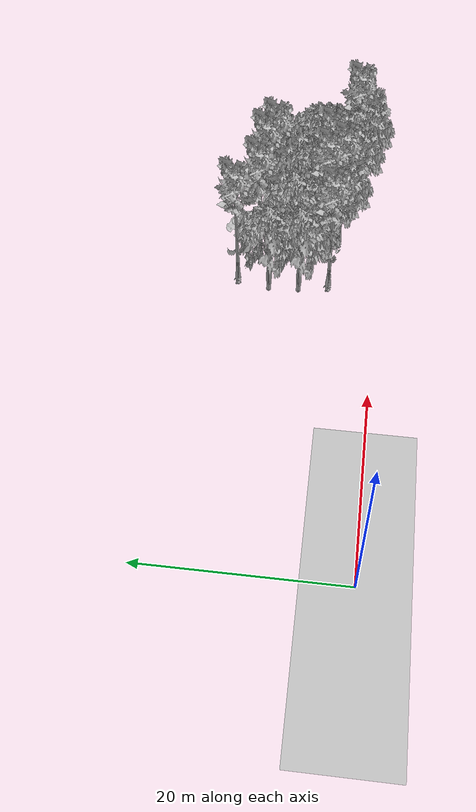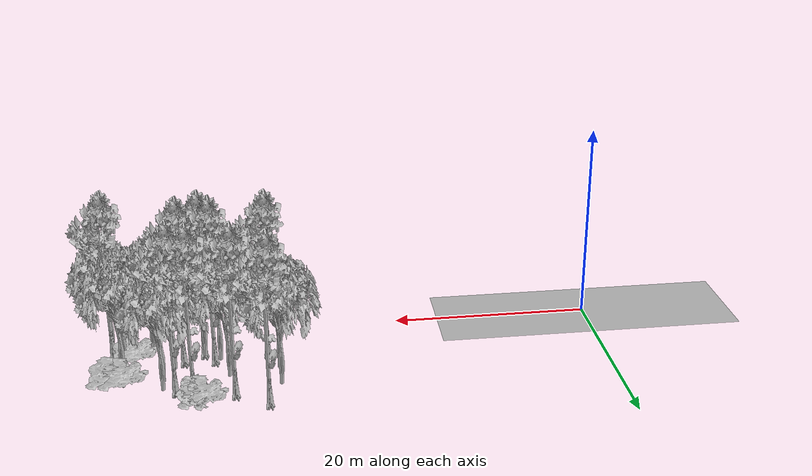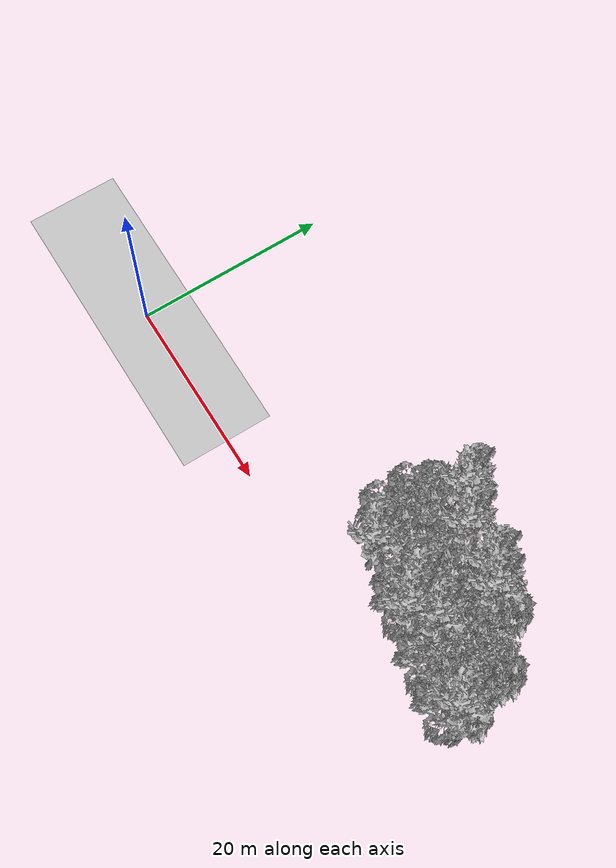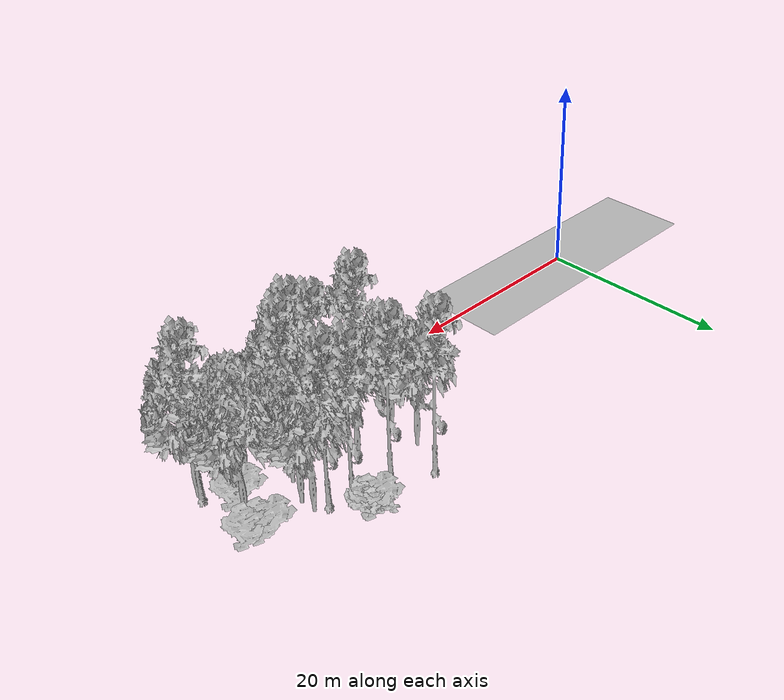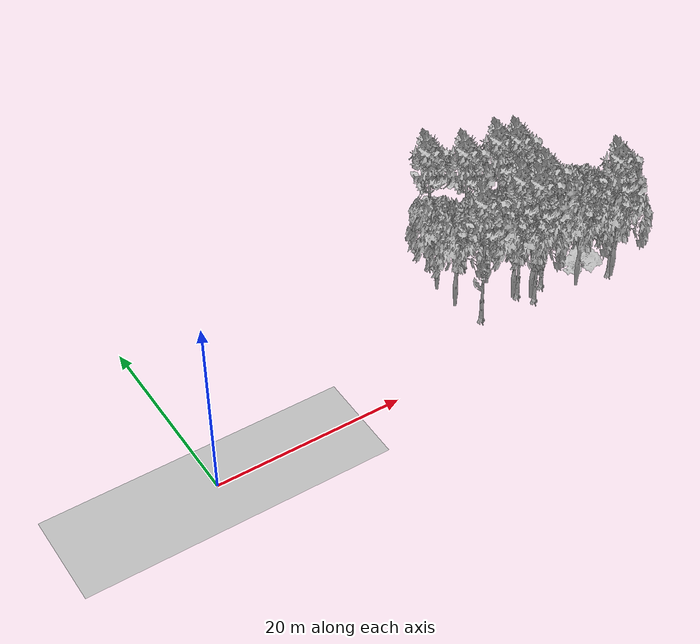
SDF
<sdf version="1.7">
 <world name="default">
  <model name="ground_plane">
   <static>1</static>
   <link name="link">
    <collision name="collision">
     <pose>-50 0 0 0 -0 0</pose>
     <geometry><plane><normal>0 0 1</normal><size>100 100</size></plane></geometry>
     <surface><contact><ode><min_depth>0.01</min_depth><max_vel>0</max_vel></ode></contact></surface>
    </collision>
    <visual name="grass">
     <cast_shadows>0</cast_shadows>
     <geometry>
      <mesh>
       <scale>0.5814285714285714 0.18142857142857144 0.1</scale>
       <uri>file://grass_plane/meshes/grass_plane.dae</uri>
      </mesh>
     </geometry>
    </visual>
   </link>
  </model>
  <model name="Tree 1">
   <static>1</static>
   <pose>39.438534800805016 4.661958155739793 0 1.57079 -0 0</pose>
   <link name="link">
    <collision name="collision">
     <geometry><mesh><scale>3.5 5 3.5</scale><uri>model://tree_2/meshes/tree_2.obj</uri></mesh></geometry>
    </collision>
    <visual name="visual">
     <geometry><mesh><scale>3.5 5 3.5</scale><uri>model://tree_2/meshes/tree_2.obj</uri></mesh></geometry>
    </visual>
   </link>
  </model>
  <model name="Tree 21">
   <static>1</static>
   <pose>47.174540948818844 7.239426667694268 0 1.57079 -0 0</pose>
   <link name="link">
    <collision name="collision">
     <geometry><mesh><scale>3.5 5 3.5</scale><uri>model://tree_2/meshes/tree_2.obj</uri></mesh></geometry>
    </collision>
    <visual name="visual">
     <geometry><mesh><scale>3.5 5 3.5</scale><uri>model://tree_2/meshes/tree_2.obj</uri></mesh></geometry>
    </visual>
   </link>
  </model>
  <model name="Tree 28">
   <static>1</static>
   <pose>48.171285346727814 9.23360146076735 0 1.57079 -0 0</pose>
   <link name="link">
    <collision name="collision">
     <geometry><mesh><scale>3 2 3</scale><uri>model://tree_3/meshes/tree_3.obj</uri></mesh></geometry>
    </collision>
    <visual name="visual">
     <geometry><mesh><scale>3 2 3</scale><uri>model://tree_3/meshes/tree_3.obj</uri></mesh></geometry>
    </visual>
   </link>
  </model>
  <model name="Tree 36">
   <static>1</static>
   <pose>43.208266657189924 9.308287690918334 0 1.57079 -0 0</pose>
   <link name="link">
    <collision name="collision">
     <geometry><mesh><scale>3.5 5 3.5</scale><uri>model://tree_2/meshes/tree_2.obj</uri></mesh></geometry>
    </collision>
    <visual name="visual">
     <geometry><mesh><scale>3.5 5 3.5</scale><uri>model://tree_2/meshes/tree_2.obj</uri></mesh></geometry>
    </visual>
   </link>
  </model>
  <model name="Tree 42">
   <static>1</static>
   <pose>39.64517526174194 4.24558620658852 0 1.57079 -0 0</pose>
   <link name="link">
    <collision name="collision">
     <geometry><mesh><scale>3.5 5 3.5</scale><uri>model://tree_9/meshes/tree_9.obj</uri></mesh></geometry>
    </collision>
    <visual name="visual">
     <geometry><mesh><scale>3.5 5 3.5</scale><uri>model://tree_9/meshes/tree_9.obj</uri></mesh></geometry>
    </visual>
   </link>
  </model>
  <model name="Tree 68">
   <static>1</static>
   <pose>32.05835510216215 11.019620846693915 0 1.57079 -0 0</pose>
   <link name="link">
    <collision name="collision">
     <geometry><mesh><scale>3.5 5 3.5</scale><uri>model://tree_2/meshes/tree_2.obj</uri></mesh></geometry>
    </collision>
    <visual name="visual">
     <geometry><mesh><scale>3.5 5 3.5</scale><uri>model://tree_2/meshes/tree_2.obj</uri></mesh></geometry>
    </visual>
   </link>
  </model>
  <model name="Tree 85">
   <static>1</static>
   <pose>42.262467730414485 6.971455879778915 0 1.57079 -0 0</pose>
   <link name="link">
    <collision name="collision">
     <geometry><mesh><scale>3.5 5 3.5</scale><uri>model://tree_2/meshes/tree_2.obj</uri></mesh></geometry>
    </collision>
    <visual name="visual">
     <geometry><mesh><scale>3.5 5 3.5</scale><uri>model://tree_2/meshes/tree_2.obj</uri></mesh></geometry>
    </visual>
   </link>
  </model>
  <model name="Tree 101">
   <static>1</static>
   <pose>39.44321117397 13.825564177482395 0 1.57079 -0 0</pose>
   <link name="link">
    <collision name="collision">
     <geometry><mesh><scale>3 2 3</scale><uri>model://tree_3/meshes/tree_3.obj</uri></mesh></geometry>
    </collision>
    <visual name="visual">
     <geometry><mesh><scale>3 2 3</scale><uri>model://tree_3/meshes/tree_3.obj</uri></mesh></geometry>
    </visual>
   </link>
  </model>
  <model name="Tree 102">
   <static>1</static>
   <pose>47.05776648851011 6.107167622781649 0 1.57079 -0 0</pose>
   <link name="link">
    <collision name="collision">
     <geometry><mesh><scale>3.5 5 3.5</scale><uri>model://tree_2/meshes/tree_2.obj</uri></mesh></geometry>
    </collision>
    <visual name="visual">
     <geometry><mesh><scale>3.5 5 3.5</scale><uri>model://tree_2/meshes/tree_2.obj</uri></mesh></geometry>
    </visual>
   </link>
  </model>
  <model name="Tree 111">
   <static>1</static>
   <pose>46.3862062708275 5.071837659205293 0 1.57079 -0 0</pose>
   <link name="link">
    <collision name="collision">
     <geometry><mesh><scale>3 2 3</scale><uri>model://tree_3/meshes/tree_3.obj</uri></mesh></geometry>
    </collision>
    <visual name="visual">
     <geometry><mesh><scale>3 2 3</scale><uri>model://tree_3/meshes/tree_3.obj</uri></mesh></geometry>
    </visual>
   </link>
  </model>
  <model name="Tree 114">
   <static>1</static>
   <pose>47.02110284671839 9.617382538339683 0 1.57079 -0 0</pose>
   <link name="link">
    <collision name="collision">
     <geometry><mesh><scale>3 2 3</scale><uri>model://tree_3/meshes/tree_3.obj</uri></mesh></geometry>
    </collision>
    <visual name="visual">
     <geometry><mesh><scale>3 2 3</scale><uri>model://tree_3/meshes/tree_3.obj</uri></mesh></geometry>
    </visual>
   </link>
  </model>
  <model name="Tree 120">
   <static>1</static>
   <pose>41.5613821377452 5.6217864798113055 0 1.57079 -0 0</pose>
   <link name="link">
    <collision name="collision">
     <geometry><mesh><scale>3.5 5 3.5</scale><uri>model://tree_9/meshes/tree_9.obj</uri></mesh></geometry>
    </collision>
    <visual name="visual">
     <geometry><mesh><scale>3.5 5 3.5</scale><uri>model://tree_9/meshes/tree_9.obj</uri></mesh></geometry>
    </visual>
   </link>
  </model>
  <model name="Tree 121">
   <static>1</static>
   <pose>39.85179484441602 13.952411223870676 0 1.57079 -0 0</pose>
   <link name="link">
    <collision name="collision">
     <geometry><mesh><scale>4 2.5 4</scale><uri>model://tree_1/meshes/tree_1.obj</uri></mesh></geometry>
    </collision>
    <visual name="visual">
     <geometry><mesh><scale>4 2.5 4</scale><uri>model://tree_1/meshes/tree_1.obj</uri></mesh></geometry>
    </visual>
   </link>
  </model>
  <model name="Tree 155">
   <static>1</static>
   <pose>33.34268617506224 14.39269595670175 0 1.57079 -0 0</pose>
   <link name="link">
    <collision name="collision">
     <geometry><mesh><scale>3.5 5 3.5</scale><uri>model://tree_9/meshes/tree_9.obj</uri></mesh></geometry>
    </collision>
    <visual name="visual">
     <geometry><mesh><scale>3.5 5 3.5</scale><uri>model://tree_9/meshes/tree_9.obj</uri></mesh></geometry>
    </visual>
   </link>
  </model>
  <model name="Tree 181">
   <static>1</static>
   <pose>36.47399879086008 12.365520042423878 0 1.57079 -0 0</pose>
   <link name="link">
    <collision name="collision">
     <geometry><mesh><scale>3.5 5 3.5</scale><uri>model://tree_9/meshes/tree_9.obj</uri></mesh></geometry>
    </collision>
    <visual name="visual">
     <geometry><mesh><scale>3.5 5 3.5</scale><uri>model://tree_9/meshes/tree_9.obj</uri></mesh></geometry>
    </visual>
   </link>
  </model>
  <model name="Tree 196">
   <static>1</static>
   <pose>48.623711561014645 3.25286839031477 0 1.57079 -0 0</pose>
   <link name="link">
    <collision name="collision">
     <geometry><mesh><scale>3.5 5 3.5</scale><uri>model://tree_9/meshes/tree_9.obj</uri></mesh></geometry>
    </collision>
    <visual name="visual">
     <geometry><mesh><scale>3.5 5 3.5</scale><uri>model://tree_9/meshes/tree_9.obj</uri></mesh></geometry>
    </visual>
   </link>
  </model>
  <model name="Tree 199">
   <static>1</static>
   <pose>43.1397159283902 10.807668558130992 0 1.57079 -0 0</pose>
   <link name="link">
    <collision name="collision">
     <geometry><mesh><scale>3.5 5 3.5</scale><uri>model://tree_2/meshes/tree_2.obj</uri></mesh></geometry>
    </collision>
    <visual name="visual">
     <geometry><mesh><scale>3.5 5 3.5</scale><uri>model://tree_2/meshes/tree_2.obj</uri></mesh></geometry>
    </visual>
   </link>
  </model>
  <model name="Tree 205">
   <static>1</static>
   <pose>40.34126237144221 12.087512408156698 0 1.57079 -0 0</pose>
   <link name="link">
    <collision name="collision">
     <geometry><mesh><scale>3.5 5 3.5</scale><uri>model://tree_9/meshes/tree_9.obj</uri></mesh></geometry>
    </collision>
    <visual name="visual">
     <geometry><mesh><scale>3.5 5 3.5</scale><uri>model://tree_9/meshes/tree_9.obj</uri></mesh></geometry>
    </visual>
   </link>
  </model>
  <model name="Tree 211">
   <static>1</static>
   <pose>33.39917056379096 4.909115820037478 0 1.57079 -0 0</pose>
   <link name="link">
    <collision name="collision">
     <geometry><mesh><scale>3.5 5 3.5</scale><uri>model://tree_9/meshes/tree_9.obj</uri></mesh></geometry>
    </collision>
    <visual name="visual">
     <geometry><mesh><scale>3.5 5 3.5</scale><uri>model://tree_9/meshes/tree_9.obj</uri></mesh></geometry>
    </visual>
   </link>
  </model>
  <model name="Tree 219">
   <static>1</static>
   <pose>37.91061191443144 5.710538215639019 0 1.57079 -0 0</pose>
   <link name="link">
    <collision name="collision">
     <geometry><mesh><scale>3.5 5 3.5</scale><uri>model://tree_2/meshes/tree_2.obj</uri></mesh></geometry>
    </collision>
    <visual name="visual">
     <geometry><mesh><scale>3.5 5 3.5</scale><uri>model://tree_2/meshes/tree_2.obj</uri></mesh></geometry>
    </visual>
   </link>
  </model>
  <model name="Tree 236">
   <static>1</static>
   <pose>42.06820888979391 11.193255099032822 0 1.57079 -0 0</pose>
   <link name="link">
    <collision name="collision">
     <geometry><mesh><scale>3.5 5 3.5</scale><uri>model://tree_9/meshes/tree_9.obj</uri></mesh></geometry>
    </collision>
    <visual name="visual">
     <geometry><mesh><scale>3.5 5 3.5</scale><uri>model://tree_9/meshes/tree_9.obj</uri></mesh></geometry>
    </visual>
   </link>
  </model>
  <model name="Tree 262">
   <static>1</static>
   <pose>38.56087972368735 5.7467367745303015 0 1.57079 -0 0</pose>
   <link name="link">
    <collision name="collision">
     <geometry><mesh><scale>3.5 5 3.5</scale><uri>model://tree_9/meshes/tree_9.obj</uri></mesh></geometry>
    </collision>
    <visual name="visual">
     <geometry><mesh><scale>3.5 5 3.5</scale><uri>model://tree_9/meshes/tree_9.obj</uri></mesh></geometry>
    </visual>
   </link>
  </model>
  <model name="Tree 265">
   <static>1</static>
   <pose>32.18614175607965 7.938803890251652 0 1.57079 -0 0</pose>
   <link name="link">
    <collision name="collision">
     <geometry><mesh><scale>3.5 5 3.5</scale><uri>model://tree_2/meshes/tree_2.obj</uri></mesh></geometry>
    </collision>
    <visual name="visual">
     <geometry><mesh><scale>3.5 5 3.5</scale><uri>model://tree_2/meshes/tree_2.obj</uri></mesh></geometry>
    </visual>
   </link>
  </model>
  <model name="Tree 279">
   <static>1</static>
   <pose>36.979157532697926 8.996236994309665 0 1.57079 -0 0</pose>
   <link name="link">
    <collision name="collision">
     <geometry><mesh><scale>3.5 5 3.5</scale><uri>model://tree_2/meshes/tree_2.obj</uri></mesh></geometry>
    </collision>
    <visual name="visual">
     <geometry><mesh><scale>3.5 5 3.5</scale><uri>model://tree_2/meshes/tree_2.obj</uri></mesh></geometry>
    </visual>
   </link>
  </model>
  <model name="Tree 288">
   <static>1</static>
   <pose>48.58248069749337 2.817466150083149 0 1.57079 -0 0</pose>
   <link name="link">
    <collision name="collision">
     <geometry><mesh><scale>3.5 5 3.5</scale><uri>model://tree_2/meshes/tree_2.obj</uri></mesh></geometry>
    </collision>
    <visual name="visual">
     <geometry><mesh><scale>3.5 5 3.5</scale><uri>model://tree_2/meshes/tree_2.obj</uri></mesh></geometry>
    </visual>
   </link>
  </model>
  <model name="Tree 296">
   <static>1</static>
   <pose>44.54277803715321 3.6423898433748434 0 1.57079 -0 0</pose>
   <link name="link">
    <collision name="collision">
     <geometry><mesh><scale>3.5 5 3.5</scale><uri>model://tree_2/meshes/tree_2.obj</uri></mesh></geometry>
    </collision>
    <visual name="visual">
     <geometry><mesh><scale>3.5 5 3.5</scale><uri>model://tree_2/meshes/tree_2.obj</uri></mesh></geometry>
    </visual>
   </link>
  </model>
 </world>
</sdf>
